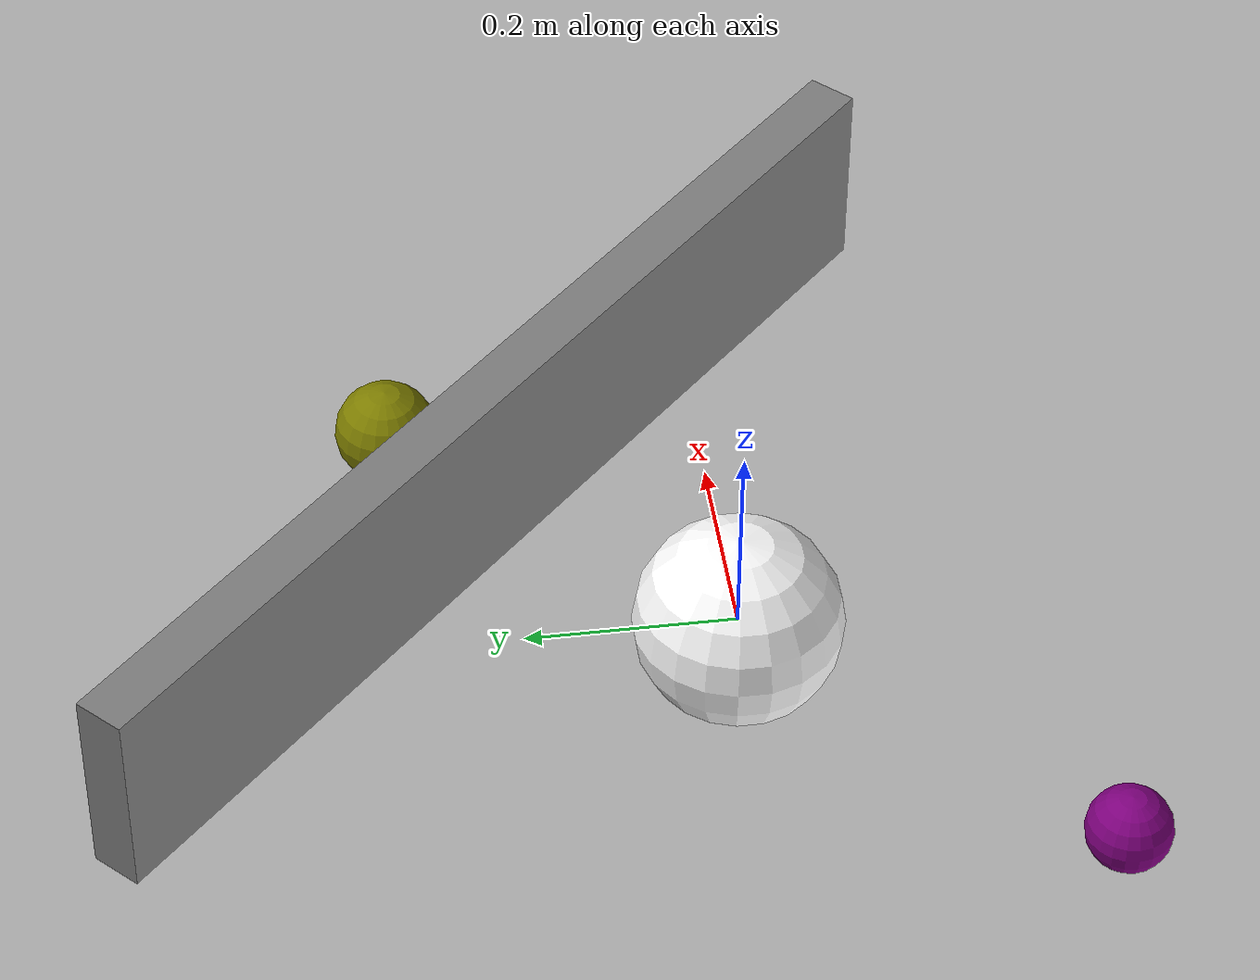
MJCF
<mujoco model='basic move'>
    <!-- This file is going to make the structure of a moving_hand -->
	<compiler inertiafromgeom='true' angle='degree'/>
    <default>
        <joint limited='true' damping='1' armature='0'/>
        <geom contype='1' conaffinity='1' condim='1' rgba='0.5 0.3 .4 1'
        	margin="0.001" solref=".02 1" solimp=".8 .8 .01"/>
        <motor ctrlrange='-.4 .4' ctrllimited='true'/>
		<!-- add some classes -->
    </default>

    <option timestep='0.002' iterations="50" tolerance="1e-10" solver="Newton" jacobian="dense" cone="elliptic"/>

    <size nstack="1000000"/>

    <visual>
	<!-- the visual part, which is not very important -->
        <map fogstart="3" fogend="5" force="0.1" znear="0.5"/>
        <quality shadowsize="2048" offsamples="8"/>
        <global offwidth="800" offheight="800"/>
		<!-- the size of the scenary -->
    </visual>

    <asset>
        <!-- asset is the predefined setting -->
		<texture type="skybox" builtin="gradient" width="128" height="128" rgb1=".4 .6 .8"
            rgb2="0 0 0"/>
        <texture name="texgeom" type="cube" builtin="flat" mark="cross" width="127" height="1278"
            rgb1="0.4 0.4 0.1" rgb2="0.5 0.5 0.1" markrgb="1 1 1" random="0.01"/>
        <texture name="texplane" type="2d" builtin="checker" rgb1=".2 .3 .4" rgb2=".1 0.15 0.2"
            width="512" height="512"/>
		<!-- the material is a more complicated structure -->
        <material name='MatPlane' reflectance='0.3' texture="texplane" texrepeat="1 1" texuniform="true"/>
    </asset>

    <worldbody>
		<!-- the light is bounded on a body-->
        <light mode='targetbodycom' target='ball' directional='false' castshadow='false'  diffuse='.8 .8 .8' specular='0.3 0.3 0.3' pos='1 1 4.0' dir='0 0 -1'/>
		<!-- structure for the hand first -->
		<body name='ball' pos='-0.3 -0.3 0.0'>
            <!-- transition free on this plane -->
			<joint name='slide1' type='slide' range='0 1.0' axis='1 0 0' />
			<joint name='slide2' type='slide' range='0 1.0' axis='0 1 0' />
			<geom type='sphere' size="0.04" rgba=".5 .0 .5 1"/>
		</body>
		<body name='slidebar' pos='0.3 0.3 0'>
			<geom type='sphere' size='0.05' rgba=".5 .5 .0 1"/>
			<site name='button' type='sphere' size='0.1' rgba='1 1 1 0'/>
			<!-- the button should free move -->
			<joint name='slide3' type='slide' range='0 1.0' axis='1 0 0' />
			<joint name='slide4' type='slide' range='0 1.0' axis='0 1 0' />
		</body>
		<!-- safety part ------------------------------------>
		<body name = 'irl' axisangle='0 0 1 -45' pos='0 0 0'>
		    <geom name = 'irl' pos='0 0 0' type='sphere' rgba='1 1 1 1' size = '0.1'/>
		    <site name='irl' pos='0 0 0' type='sphere' rgba='1 1 1 0' size='0.15'/>
            <joint name='irl' type='slide' range='-0.1 0.1' axis='1 0 0'/>
        </body>
		<!-- a coordinate around coordinate of size 0.15 -->
		<body name='door' axisangle='0 0 1 45' pos='0.2 0.2 0.05'>
			<geom type='box' size='0.02 0.5 0.05' rgba='1 1 1 1'/>
            <site name='door' type='box' size='0.025 0.55 0.1' rgba='0.5 0.5 0.5 1'/>
			<joint name='door' type='slide' range='0 1.0' axis='0 1 0' />
		</body>

        <camera name="camera1" mode="fixed" pos="0 0 2.6" />
        <camera name="camera2" mode="fixed" pos="0 0.5 0" quat="0 0 1 1"/>
    </worldbody>
	<!-- body finished -->
	<sensor>
		<touch name='touch_button' site='button'/>
		<touch name='door' site='door'/>
	</sensor>
	<!-- actuator -->
	<actuator>
		<motor joint='slide1' name='slide1' ctrlrange='-0.9 0.9'/>
		<motor joint='slide2' name='slide2' ctrlrange='-0.9 0.9'/>
		<motor joint='irl' name='irl' ctrlrange='-3 3'/>
		<motor joint='door' name='door' ctrlrange='-5.0 5.0'/>
	</actuator>
</mujoco>
